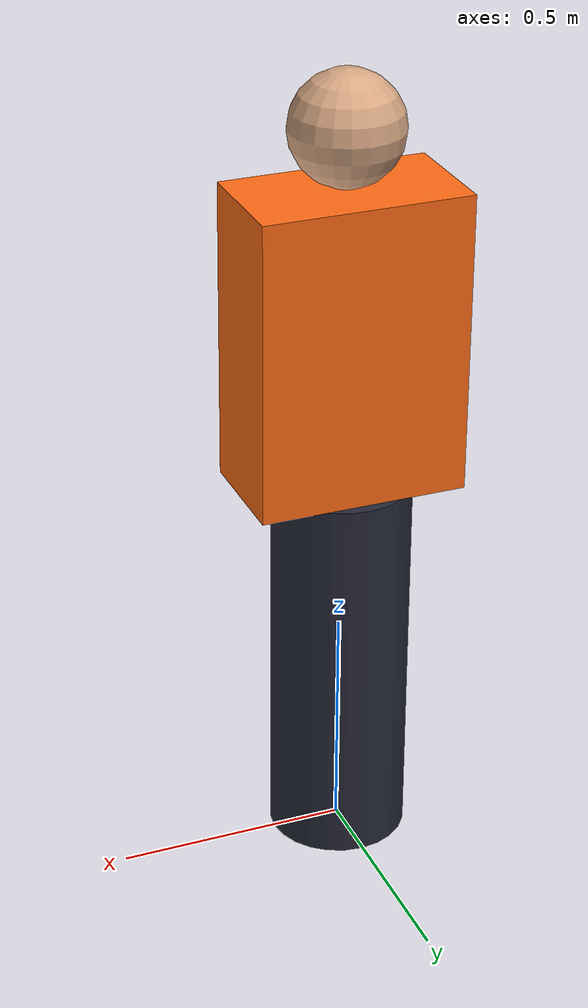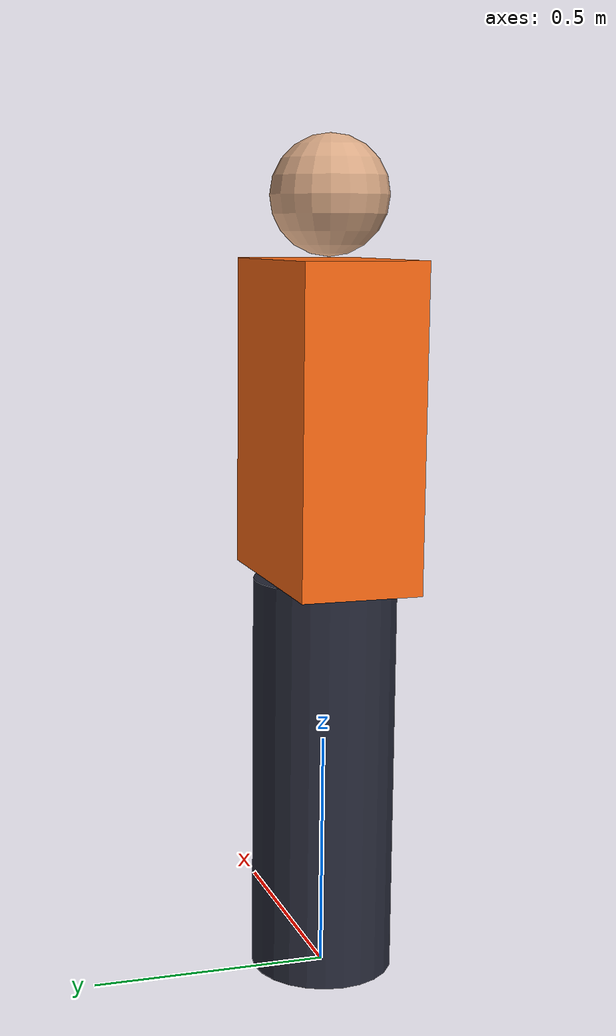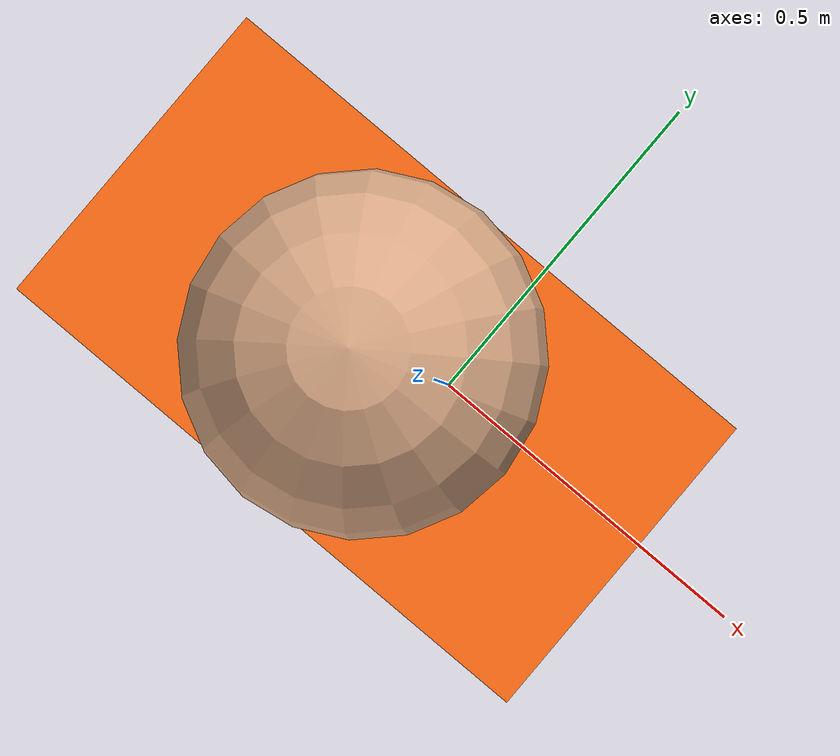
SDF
<?xml version="1.0"?>
<sdf version="1.9">
  <model name="yungu_pedestrian">
    <static>true</static>
    <link name="body">
      <visual name="legs">
        <pose>0 0 0.425 0 0 0</pose>
        <geometry><cylinder><radius>0.15</radius><length>0.85</length></cylinder></geometry>
        <material>
          <ambient>0.10 0.10 0.14 1</ambient>
          <diffuse>0.15 0.16 0.22 1</diffuse>
        </material>
      </visual>
      <visual name="torso">
        <pose>0 0 1.175 0 0 0</pose>
        <geometry><box><size>0.45 0.25 0.65</size></box></geometry>
        <material>
          <ambient>0.60 0.24 0.05 1</ambient>
          <diffuse>1.00 0.42 0.08 1</diffuse>
        </material>
      </visual>
      <visual name="head">
        <pose>0 0 1.625 0 0 0</pose>
        <geometry><sphere><radius>0.12</radius></sphere></geometry>
        <material>
          <ambient>0.45 0.32 0.24 1</ambient>
          <diffuse>0.85 0.66 0.52 1</diffuse>
        </material>
      </visual>
      <collision name="body_collision">
        <pose>0 0 0.875 0 0 0</pose>
        <geometry><box><size>0.50 0.40 1.75</size></box></geometry>
      </collision>
    </link>
  </model>
</sdf>
